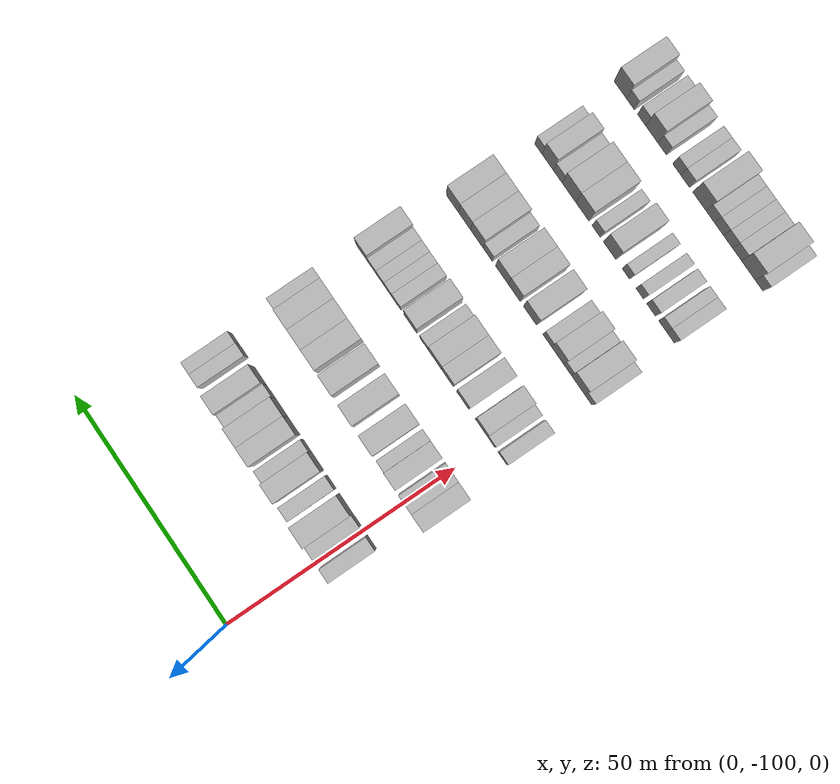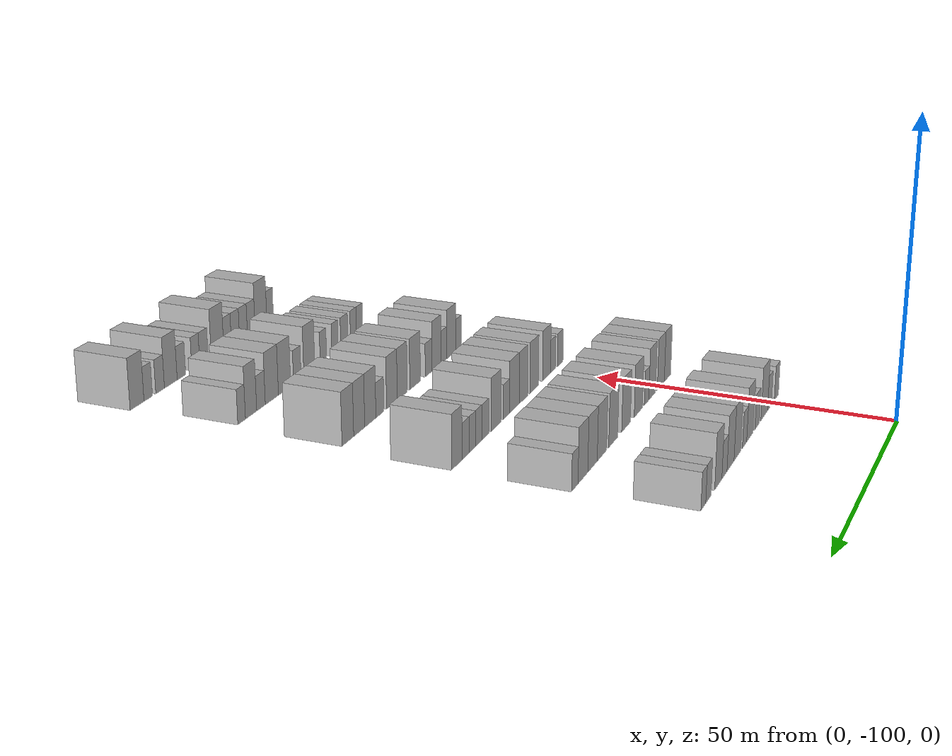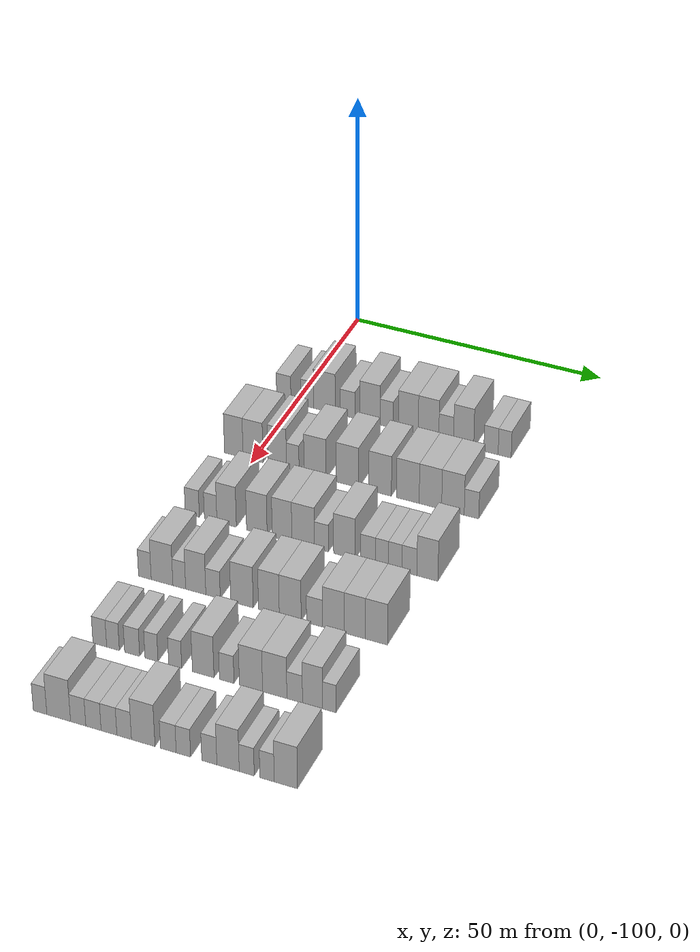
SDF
<sdf version="1.6">
 <world name="default">
  <model name="building_62">
   <static>1</static>
   <pose>25.0000 -102.4413 0 0.000000 0.000000 0.000000</pose>
   <link name="link">
    <pose>0 0 3.00 0 0 0</pose>
    <collision name="collision"><geometry><box><size>10.0000 2.9360 6.0000</size></box></geometry></collision>
    <visual name="visual">
     <cast_shadows>0</cast_shadows>
     <geometry><box><size>10.0000 2.9360 6.0000</size></box></geometry>
     <material>
      <script>
       <uri>model://HANNAS_wall/materials/scripts</uri>
       <uri>model://HANNAS_wall/materials/textures</uri>
       <name>vrc/HANNAS_wall</name>
      </script>
     </material>
    </visual>
   </link>
  </model>
  <model name="building_63">
   <static>1</static>
   <pose>25.0000 -97.6475 0 0.000000 0.000000 0.000000</pose>
   <link name="link">
    <pose>0 0 3.00 0 0 0</pose>
    <collision name="collision"><geometry><box><size>10.0000 2.6516 6.0000</size></box></geometry></collision>
    <visual name="visual">
     <cast_shadows>0</cast_shadows>
     <geometry><box><size>10.0000 2.6516 6.0000</size></box></geometry>
     <material>
      <script>
       <uri>model://HANNAS_wall/materials/scripts</uri>
       <uri>model://HANNAS_wall/materials/textures</uri>
       <name>vrc/HANNAS_wall</name>
      </script>
     </material>
    </visual>
   </link>
  </model>
  <model name="building_64">
   <static>1</static>
   <pose>25.0000 -94.1188 0 0.000000 0.000000 0.000000</pose>
   <link name="link">
    <pose>0 0 4.50 0 0 0</pose>
    <collision name="collision"><geometry><box><size>10.0000 4.4057 9.0000</size></box></geometry></collision>
    <visual name="visual">
     <cast_shadows>0</cast_shadows>
     <geometry><box><size>10.0000 4.4057 9.0000</size></box></geometry>
     <material>
      <script>
       <uri>model://HANNAS_wall/materials/scripts</uri>
       <uri>model://HANNAS_wall/materials/textures</uri>
       <name>vrc/HANNAS_wall</name>
      </script>
     </material>
    </visual>
   </link>
  </model>
  <model name="building_65">
   <static>1</static>
   <pose>25.0000 -89.4282 0 0.000000 0.000000 0.000000</pose>
   <link name="link">
    <pose>0 0 3.00 0 0 0</pose>
    <collision name="collision"><geometry><box><size>10.0000 2.9756 6.0000</size></box></geometry></collision>
    <visual name="visual">
     <cast_shadows>0</cast_shadows>
     <geometry><box><size>10.0000 2.9756 6.0000</size></box></geometry>
     <material>
      <script>
       <uri>model://HANNAS_wall/materials/scripts</uri>
       <uri>model://HANNAS_wall/materials/textures</uri>
       <name>vrc/HANNAS_wall</name>
      </script>
     </material>
    </visual>
   </link>
  </model>
  <model name="building_66">
   <static>1</static>
   <pose>25.0000 -84.8848 0 0.000000 0.000000 0.000000</pose>
   <link name="link">
    <pose>0 0 4.50 0 0 0</pose>
    <collision name="collision"><geometry><box><size>10.0000 4.1113 9.0000</size></box></geometry></collision>
    <visual name="visual">
     <cast_shadows>0</cast_shadows>
     <geometry><box><size>10.0000 4.1113 9.0000</size></box></geometry>
     <material>
      <script>
       <uri>model://HANNAS_wall/materials/scripts</uri>
       <uri>model://HANNAS_wall/materials/textures</uri>
       <name>vrc/HANNAS_wall</name>
      </script>
     </material>
    </visual>
   </link>
  </model>
  <model name="building_67">
   <static>1</static>
   <pose>25.0000 -81.4990 0 0.000000 0.000000 0.000000</pose>
   <link name="link">
    <pose>0 0 3.00 0 0 0</pose>
    <collision name="collision"><geometry><box><size>10.0000 2.6603 6.0000</size></box></geometry></collision>
    <visual name="visual">
     <cast_shadows>0</cast_shadows>
     <geometry><box><size>10.0000 2.6603 6.0000</size></box></geometry>
     <material>
      <script>
       <uri>model://HANNAS_wall/materials/scripts</uri>
       <uri>model://HANNAS_wall/materials/textures</uri>
       <name>vrc/HANNAS_wall</name>
      </script>
     </material>
    </visual>
   </link>
  </model>
  <model name="building_68">
   <static>1</static>
   <pose>25.0000 -77.1677 0 0.000000 0.000000 0.000000</pose>
   <link name="link">
    <pose>0 0 4.50 0 0 0</pose>
    <collision name="collision"><geometry><box><size>10.0000 4.0021 9.0000</size></box></geometry></collision>
    <visual name="visual">
     <cast_shadows>0</cast_shadows>
     <geometry><box><size>10.0000 4.0021 9.0000</size></box></geometry>
     <material>
      <script>
       <uri>model://HANNAS_wall/materials/scripts</uri>
       <uri>model://HANNAS_wall/materials/textures</uri>
       <name>vrc/HANNAS_wall</name>
      </script>
     </material>
    </visual>
   </link>
  </model>
  <model name="building_69">
   <static>1</static>
   <pose>25.0000 -73.1224 0 0.000000 0.000000 0.000000</pose>
   <link name="link">
    <pose>0 0 4.50 0 0 0</pose>
    <collision name="collision"><geometry><box><size>10.0000 4.0885 9.0000</size></box></geometry></collision>
    <visual name="visual">
     <cast_shadows>0</cast_shadows>
     <geometry><box><size>10.0000 4.0885 9.0000</size></box></geometry>
     <material>
      <script>
       <uri>model://HANNAS_wall/materials/scripts</uri>
       <uri>model://HANNAS_wall/materials/textures</uri>
       <name>vrc/HANNAS_wall</name>
      </script>
     </material>
    </visual>
   </link>
  </model>
  <model name="building_70">
   <static>1</static>
   <pose>25.0000 -69.6145 0 0.000000 0.000000 0.000000</pose>
   <link name="link">
    <pose>0 0 3.00 0 0 0</pose>
    <collision name="collision"><geometry><box><size>10.0000 2.9274 6.0000</size></box></geometry></collision>
    <visual name="visual">
     <cast_shadows>0</cast_shadows>
     <geometry><box><size>10.0000 2.9274 6.0000</size></box></geometry>
     <material>
      <script>
       <uri>model://HANNAS_wall/materials/scripts</uri>
       <uri>model://HANNAS_wall/materials/textures</uri>
       <name>vrc/HANNAS_wall</name>
      </script>
     </material>
    </visual>
   </link>
  </model>
  <model name="building_71">
   <static>1</static>
   <pose>25.0000 -66.1592 0 0.000000 0.000000 0.000000</pose>
   <link name="link">
    <pose>0 0 4.50 0 0 0</pose>
    <collision name="collision"><geometry><box><size>10.0000 3.9831 9.0000</size></box></geometry></collision>
    <visual name="visual">
     <cast_shadows>0</cast_shadows>
     <geometry><box><size>10.0000 3.9831 9.0000</size></box></geometry>
     <material>
      <script>
       <uri>model://HANNAS_wall/materials/scripts</uri>
       <uri>model://HANNAS_wall/materials/textures</uri>
       <name>vrc/HANNAS_wall</name>
      </script>
     </material>
    </visual>
   </link>
  </model>
  <model name="building_72">
   <static>1</static>
   <pose>25.0000 -60.7591 0 0.000000 0.000000 0.000000</pose>
   <link name="link">
    <pose>0 0 3.00 0 0 0</pose>
    <collision name="collision"><geometry><box><size>10.0000 2.8173 6.0000</size></box></geometry></collision>
    <visual name="visual">
     <cast_shadows>0</cast_shadows>
     <geometry><box><size>10.0000 2.8173 6.0000</size></box></geometry>
     <material>
      <script>
       <uri>model://HANNAS_wall/materials/scripts</uri>
       <uri>model://HANNAS_wall/materials/textures</uri>
       <name>vrc/HANNAS_wall</name>
      </script>
     </material>
    </visual>
   </link>
  </model>
  <model name="building_73">
   <static>1</static>
   <pose>25.0000 -58.0725 0 0.000000 0.000000 0.000000</pose>
   <link name="link">
    <pose>0 0 3.00 0 0 0</pose>
    <collision name="collision"><geometry><box><size>10.0000 2.5558 6.0000</size></box></geometry></collision>
    <visual name="visual">
     <cast_shadows>0</cast_shadows>
     <geometry><box><size>10.0000 2.5558 6.0000</size></box></geometry>
     <material>
      <script>
       <uri>model://HANNAS_wall/materials/scripts</uri>
       <uri>model://HANNAS_wall/materials/textures</uri>
       <name>vrc/HANNAS_wall</name>
      </script>
     </material>
    </visual>
   </link>
  </model>
  <model name="building_236">
   <static>1</static>
   <pose>44.0000 -103.9884 0 0.000000 0.000000 0.000000</pose>
   <link name="link">
    <pose>0 0 4.50 0 0 0</pose>
    <collision name="collision"><geometry><box><size>10.0000 3.7466 9.0000</size></box></geometry></collision>
    <visual name="visual">
     <cast_shadows>0</cast_shadows>
     <geometry><box><size>10.0000 3.7466 9.0000</size></box></geometry>
     <material>
      <script>
       <uri>model://HANNAS_wall/materials/scripts</uri>
       <uri>model://HANNAS_wall/materials/textures</uri>
       <name>vrc/HANNAS_wall</name>
      </script>
     </material>
    </visual>
   </link>
  </model>
  <model name="building_237">
   <static>1</static>
   <pose>44.0000 -100.1143 0 0.000000 0.000000 0.000000</pose>
   <link name="link">
    <pose>0 0 4.50 0 0 0</pose>
    <collision name="collision"><geometry><box><size>10.0000 4.0016 9.0000</size></box></geometry></collision>
    <visual name="visual">
     <cast_shadows>0</cast_shadows>
     <geometry><box><size>10.0000 4.0016 9.0000</size></box></geometry>
     <material>
      <script>
       <uri>model://HANNAS_wall/materials/scripts</uri>
       <uri>model://HANNAS_wall/materials/textures</uri>
       <name>vrc/HANNAS_wall</name>
      </script>
     </material>
    </visual>
   </link>
  </model>
  <model name="building_238">
   <static>1</static>
   <pose>44.0000 -95.2586 0 0.000000 0.000000 0.000000</pose>
   <link name="link">
    <pose>0 0 4.50 0 0 0</pose>
    <collision name="collision"><geometry><box><size>10.0000 3.7097 9.0000</size></box></geometry></collision>
    <visual name="visual">
     <cast_shadows>0</cast_shadows>
     <geometry><box><size>10.0000 3.7097 9.0000</size></box></geometry>
     <material>
      <script>
       <uri>model://HANNAS_wall/materials/scripts</uri>
       <uri>model://HANNAS_wall/materials/textures</uri>
       <name>vrc/HANNAS_wall</name>
      </script>
     </material>
    </visual>
   </link>
  </model>
  <model name="building_239">
   <static>1</static>
   <pose>44.0000 -92.1482 0 0.000000 0.000000 0.000000</pose>
   <link name="link">
    <pose>0 0 3.00 0 0 0</pose>
    <collision name="collision"><geometry><box><size>10.0000 2.5111 6.0000</size></box></geometry></collision>
    <visual name="visual">
     <cast_shadows>0</cast_shadows>
     <geometry><box><size>10.0000 2.5111 6.0000</size></box></geometry>
     <material>
      <script>
       <uri>model://HANNAS_wall/materials/scripts</uri>
       <uri>model://HANNAS_wall/materials/textures</uri>
       <name>vrc/HANNAS_wall</name>
      </script>
     </material>
    </visual>
   </link>
  </model>
  <model name="building_240">
   <static>1</static>
   <pose>44.0000 -87.7126 0 0.000000 0.000000 0.000000</pose>
   <link name="link">
    <pose>0 0 4.50 0 0 0</pose>
    <collision name="collision"><geometry><box><size>10.0000 4.3602 9.0000</size></box></geometry></collision>
    <visual name="visual">
     <cast_shadows>0</cast_shadows>
     <geometry><box><size>10.0000 4.3602 9.0000</size></box></geometry>
     <material>
      <script>
       <uri>model://HANNAS_wall/materials/scripts</uri>
       <uri>model://HANNAS_wall/materials/textures</uri>
       <name>vrc/HANNAS_wall</name>
      </script>
     </material>
    </visual>
   </link>
  </model>
  <model name="building_241">
   <static>1</static>
   <pose>44.0000 -81.3076 0 0.000000 0.000000 0.000000</pose>
   <link name="link">
    <pose>0 0 4.50 0 0 0</pose>
    <collision name="collision"><geometry><box><size>10.0000 4.4499 9.0000</size></box></geometry></collision>
    <visual name="visual">
     <cast_shadows>0</cast_shadows>
     <geometry><box><size>10.0000 4.4499 9.0000</size></box></geometry>
     <material>
      <script>
       <uri>model://HANNAS_wall/materials/scripts</uri>
       <uri>model://HANNAS_wall/materials/textures</uri>
       <name>vrc/HANNAS_wall</name>
      </script>
     </material>
    </visual>
   </link>
  </model>
  <model name="building_242">
   <static>1</static>
   <pose>44.0000 -74.8862 0 0.000000 0.000000 0.000000</pose>
   <link name="link">
    <pose>0 0 4.50 0 0 0</pose>
    <collision name="collision"><geometry><box><size>10.0000 4.3928 9.0000</size></box></geometry></collision>
    <visual name="visual">
     <cast_shadows>0</cast_shadows>
     <geometry><box><size>10.0000 4.3928 9.0000</size></box></geometry>
     <material>
      <script>
       <uri>model://HANNAS_wall/materials/scripts</uri>
       <uri>model://HANNAS_wall/materials/textures</uri>
       <name>vrc/HANNAS_wall</name>
      </script>
     </material>
    </visual>
   </link>
  </model>
  <model name="building_243">
   <static>1</static>
   <pose>44.0000 -69.4891 0 0.000000 0.000000 0.000000</pose>
   <link name="link">
    <pose>0 0 4.50 0 0 0</pose>
    <collision name="collision"><geometry><box><size>10.0000 4.4014 9.0000</size></box></geometry></collision>
    <visual name="visual">
     <cast_shadows>0</cast_shadows>
     <geometry><box><size>10.0000 4.4014 9.0000</size></box></geometry>
     <material>
      <script>
       <uri>model://HANNAS_wall/materials/scripts</uri>
       <uri>model://HANNAS_wall/materials/textures</uri>
       <name>vrc/HANNAS_wall</name>
      </script>
     </material>
    </visual>
   </link>
  </model>
  <model name="building_244">
   <static>1</static>
   <pose>44.0000 -65.1163 0 0.000000 0.000000 0.000000</pose>
   <link name="link">
    <pose>0 0 4.50 0 0 0</pose>
    <collision name="collision"><geometry><box><size>10.0000 4.3443 9.0000</size></box></geometry></collision>
    <visual name="visual">
     <cast_shadows>0</cast_shadows>
     <geometry><box><size>10.0000 4.3443 9.0000</size></box></geometry>
     <material>
      <script>
       <uri>model://HANNAS_wall/materials/scripts</uri>
       <uri>model://HANNAS_wall/materials/textures</uri>
       <name>vrc/HANNAS_wall</name>
      </script>
     </material>
    </visual>
   </link>
  </model>
  <model name="building_245">
   <static>1</static>
   <pose>44.0000 -60.7713 0 0.000000 0.000000 0.000000</pose>
   <link name="link">
    <pose>0 0 4.50 0 0 0</pose>
    <collision name="collision"><geometry><box><size>10.0000 4.3456 9.0000</size></box></geometry></collision>
    <visual name="visual">
     <cast_shadows>0</cast_shadows>
     <geometry><box><size>10.0000 4.3456 9.0000</size></box></geometry>
     <material>
      <script>
       <uri>model://HANNAS_wall/materials/scripts</uri>
       <uri>model://HANNAS_wall/materials/textures</uri>
       <name>vrc/HANNAS_wall</name>
      </script>
     </material>
    </visual>
   </link>
  </model>
  <model name="building_246">
   <static>1</static>
   <pose>44.0000 -57.1974 0 0.000000 0.000000 0.000000</pose>
   <link name="link">
    <pose>0 0 3.00 0 0 0</pose>
    <collision name="collision"><geometry><box><size>10.0000 2.8023 6.0000</size></box></geometry></collision>
    <visual name="visual">
     <cast_shadows>0</cast_shadows>
     <geometry><box><size>10.0000 2.8023 6.0000</size></box></geometry>
     <material>
      <script>
       <uri>model://HANNAS_wall/materials/scripts</uri>
       <uri>model://HANNAS_wall/materials/textures</uri>
       <name>vrc/HANNAS_wall</name>
      </script>
     </material>
    </visual>
   </link>
  </model>
  <model name="building_404">
   <static>1</static>
   <pose>63.0000 -103.3634 0 0.000000 0.000000 0.000000</pose>
   <link name="link">
    <pose>0 0 3.00 0 0 0</pose>
    <collision name="collision"><geometry><box><size>10.0000 2.7755 6.0000</size></box></geometry></collision>
    <visual name="visual">
     <cast_shadows>0</cast_shadows>
     <geometry><box><size>10.0000 2.7755 6.0000</size></box></geometry>
     <material>
      <script>
       <uri>model://HANNAS_wall/materials/scripts</uri>
       <uri>model://HANNAS_wall/materials/textures</uri>
       <name>vrc/HANNAS_wall</name>
      </script>
     </material>
    </visual>
   </link>
  </model>
  <model name="building_405">
   <static>1</static>
   <pose>63.0000 -99.7443 0 0.000000 0.000000 0.000000</pose>
   <link name="link">
    <pose>0 0 3.00 0 0 0</pose>
    <collision name="collision"><geometry><box><size>10.0000 2.4627 6.0000</size></box></geometry></collision>
    <visual name="visual">
     <cast_shadows>0</cast_shadows>
     <geometry><box><size>10.0000 2.4627 6.0000</size></box></geometry>
     <material>
      <script>
       <uri>model://HANNAS_wall/materials/scripts</uri>
       <uri>model://HANNAS_wall/materials/textures</uri>
       <name>vrc/HANNAS_wall</name>
      </script>
     </material>
    </visual>
   </link>
  </model>
  <model name="building_406">
   <static>1</static>
   <pose>63.0000 -96.5967 0 0.000000 0.000000 0.000000</pose>
   <link name="link">
    <pose>0 0 4.50 0 0 0</pose>
    <collision name="collision"><geometry><box><size>10.0000 3.8323 9.0000</size></box></geometry></collision>
    <visual name="visual">
     <cast_shadows>0</cast_shadows>
     <geometry><box><size>10.0000 3.8323 9.0000</size></box></geometry>
     <material>
      <script>
       <uri>model://HANNAS_wall/materials/scripts</uri>
       <uri>model://HANNAS_wall/materials/textures</uri>
       <name>vrc/HANNAS_wall</name>
      </script>
     </material>
    </visual>
   </link>
  </model>
  <model name="building_407">
   <static>1</static>
   <pose>63.0000 -90.6790 0 0.000000 0.000000 0.000000</pose>
   <link name="link">
    <pose>0 0 4.50 0 0 0</pose>
    <collision name="collision"><geometry><box><size>10.0000 4.0032 9.0000</size></box></geometry></collision>
    <visual name="visual">
     <cast_shadows>0</cast_shadows>
     <geometry><box><size>10.0000 4.0032 9.0000</size></box></geometry>
     <material>
      <script>
       <uri>model://HANNAS_wall/materials/scripts</uri>
       <uri>model://HANNAS_wall/materials/textures</uri>
       <name>vrc/HANNAS_wall</name>
      </script>
     </material>
    </visual>
   </link>
  </model>
  <model name="building_408">
   <static>1</static>
   <pose>63.0000 -85.7730 0 0.000000 0.000000 0.000000</pose>
   <link name="link">
    <pose>0 0 4.50 0 0 0</pose>
    <collision name="collision"><geometry><box><size>10.0000 3.8088 9.0000</size></box></geometry></collision>
    <visual name="visual">
     <cast_shadows>0</cast_shadows>
     <geometry><box><size>10.0000 3.8088 9.0000</size></box></geometry>
     <material>
      <script>
       <uri>model://HANNAS_wall/materials/scripts</uri>
       <uri>model://HANNAS_wall/materials/textures</uri>
       <name>vrc/HANNAS_wall</name>
      </script>
     </material>
    </visual>
   </link>
  </model>
  <model name="building_409">
   <static>1</static>
   <pose>63.0000 -81.6976 0 0.000000 0.000000 0.000000</pose>
   <link name="link">
    <pose>0 0 4.50 0 0 0</pose>
    <collision name="collision"><geometry><box><size>10.0000 4.3421 9.0000</size></box></geometry></collision>
    <visual name="visual">
     <cast_shadows>0</cast_shadows>
     <geometry><box><size>10.0000 4.3421 9.0000</size></box></geometry>
     <material>
      <script>
       <uri>model://HANNAS_wall/materials/scripts</uri>
       <uri>model://HANNAS_wall/materials/textures</uri>
       <name>vrc/HANNAS_wall</name>
      </script>
     </material>
    </visual>
   </link>
  </model>
  <model name="building_410">
   <static>1</static>
   <pose>63.0000 -78.1790 0 0.000000 0.000000 0.000000</pose>
   <link name="link">
    <pose>0 0 3.00 0 0 0</pose>
    <collision name="collision"><geometry><box><size>10.0000 2.6951 6.0000</size></box></geometry></collision>
    <visual name="visual">
     <cast_shadows>0</cast_shadows>
     <geometry><box><size>10.0000 2.6951 6.0000</size></box></geometry>
     <material>
      <script>
       <uri>model://HANNAS_wall/materials/scripts</uri>
       <uri>model://HANNAS_wall/materials/textures</uri>
       <name>vrc/HANNAS_wall</name>
      </script>
     </material>
    </visual>
   </link>
  </model>
  <model name="building_411">
   <static>1</static>
   <pose>63.0000 -73.7713 0 0.000000 0.000000 0.000000</pose>
   <link name="link">
    <pose>0 0 4.50 0 0 0</pose>
    <collision name="collision"><geometry><box><size>10.0000 4.1202 9.0000</size></box></geometry></collision>
    <visual name="visual">
     <cast_shadows>0</cast_shadows>
     <geometry><box><size>10.0000 4.1202 9.0000</size></box></geometry>
     <material>
      <script>
       <uri>model://HANNAS_wall/materials/scripts</uri>
       <uri>model://HANNAS_wall/materials/textures</uri>
       <name>vrc/HANNAS_wall</name>
      </script>
     </material>
    </visual>
   </link>
  </model>
  <model name="building_412">
   <static>1</static>
   <pose>63.0000 -69.2828 0 0.000000 0.000000 0.000000</pose>
   <link name="link">
    <pose>0 0 3.00 0 0 0</pose>
    <collision name="collision"><geometry><box><size>10.0000 2.8568 6.0000</size></box></geometry></collision>
    <visual name="visual">
     <cast_shadows>0</cast_shadows>
     <geometry><box><size>10.0000 2.8568 6.0000</size></box></geometry>
     <material>
      <script>
       <uri>model://HANNAS_wall/materials/scripts</uri>
       <uri>model://HANNAS_wall/materials/textures</uri>
       <name>vrc/HANNAS_wall</name>
      </script>
     </material>
    </visual>
   </link>
  </model>
  <model name="building_413">
   <static>1</static>
   <pose>63.0000 -66.6086 0 0.000000 0.000000 0.000000</pose>
   <link name="link">
    <pose>0 0 3.00 0 0 0</pose>
    <collision name="collision"><geometry><box><size>10.0000 2.4917 6.0000</size></box></geometry></collision>
    <visual name="visual">
     <cast_shadows>0</cast_shadows>
     <geometry><box><size>10.0000 2.4917 6.0000</size></box></geometry>
     <material>
      <script>
       <uri>model://HANNAS_wall/materials/scripts</uri>
       <uri>model://HANNAS_wall/materials/textures</uri>
       <name>vrc/HANNAS_wall</name>
      </script>
     </material>
    </visual>
   </link>
  </model>
  <model name="building_414">
   <static>1</static>
   <pose>63.0000 -64.0875 0 0.000000 0.000000 0.000000</pose>
   <link name="link">
    <pose>0 0 3.00 0 0 0</pose>
    <collision name="collision"><geometry><box><size>10.0000 2.5505 6.0000</size></box></geometry></collision>
    <visual name="visual">
     <cast_shadows>0</cast_shadows>
     <geometry><box><size>10.0000 2.5505 6.0000</size></box></geometry>
     <material>
      <script>
       <uri>model://HANNAS_wall/materials/scripts</uri>
       <uri>model://HANNAS_wall/materials/textures</uri>
       <name>vrc/HANNAS_wall</name>
      </script>
     </material>
    </visual>
   </link>
  </model>
  <model name="building_415">
   <static>1</static>
   <pose>63.0000 -61.4102 0 0.000000 0.000000 0.000000</pose>
   <link name="link">
    <pose>0 0 3.00 0 0 0</pose>
    <collision name="collision"><geometry><box><size>10.0000 2.8040 6.0000</size></box></geometry></collision>
    <visual name="visual">
     <cast_shadows>0</cast_shadows>
     <geometry><box><size>10.0000 2.8040 6.0000</size></box></geometry>
     <material>
      <script>
       <uri>model://HANNAS_wall/materials/scripts</uri>
       <uri>model://HANNAS_wall/materials/textures</uri>
       <name>vrc/HANNAS_wall</name>
      </script>
     </material>
    </visual>
   </link>
  </model>
  <model name="building_416">
   <static>1</static>
   <pose>63.0000 -58.0311 0 0.000000 0.000000 0.000000</pose>
   <link name="link">
    <pose>0 0 4.50 0 0 0</pose>
    <collision name="collision"><geometry><box><size>10.0000 3.9544 9.0000</size></box></geometry></collision>
    <visual name="visual">
     <cast_shadows>0</cast_shadows>
     <geometry><box><size>10.0000 3.9544 9.0000</size></box></geometry>
     <material>
      <script>
       <uri>model://HANNAS_wall/materials/scripts</uri>
       <uri>model://HANNAS_wall/materials/textures</uri>
       <name>vrc/HANNAS_wall</name>
      </script>
     </material>
    </visual>
   </link>
  </model>
  <model name="building_574">
   <static>1</static>
   <pose>82.0000 -103.4493 0 0.000000 0.000000 0.000000</pose>
   <link name="link">
    <pose>0 0 3.00 0 0 0</pose>
    <collision name="collision"><geometry><box><size>10.0000 2.4547 6.0000</size></box></geometry></collision>
    <visual name="visual">
     <cast_shadows>0</cast_shadows>
     <geometry><box><size>10.0000 2.4547 6.0000</size></box></geometry>
     <material>
      <script>
       <uri>model://HANNAS_wall/materials/scripts</uri>
       <uri>model://HANNAS_wall/materials/textures</uri>
       <name>vrc/HANNAS_wall</name>
      </script>
     </material>
    </visual>
   </link>
  </model>
  <model name="building_575">
   <static>1</static>
   <pose>82.0000 -100.1275 0 0.000000 0.000000 0.000000</pose>
   <link name="link">
    <pose>0 0 4.50 0 0 0</pose>
    <collision name="collision"><geometry><box><size>10.0000 4.1891 9.0000</size></box></geometry></collision>
    <visual name="visual">
     <cast_shadows>0</cast_shadows>
     <geometry><box><size>10.0000 4.1891 9.0000</size></box></geometry>
     <material>
      <script>
       <uri>model://HANNAS_wall/materials/scripts</uri>
       <uri>model://HANNAS_wall/materials/textures</uri>
       <name>vrc/HANNAS_wall</name>
      </script>
     </material>
    </visual>
   </link>
  </model>
  <model name="building_576">
   <static>1</static>
   <pose>82.0000 -96.8073 0 0.000000 0.000000 0.000000</pose>
   <link name="link">
    <pose>0 0 3.00 0 0 0</pose>
    <collision name="collision"><geometry><box><size>10.0000 2.4513 6.0000</size></box></geometry></collision>
    <visual name="visual">
     <cast_shadows>0</cast_shadows>
     <geometry><box><size>10.0000 2.4513 6.0000</size></box></geometry>
     <material>
      <script>
       <uri>model://HANNAS_wall/materials/scripts</uri>
       <uri>model://HANNAS_wall/materials/textures</uri>
       <name>vrc/HANNAS_wall</name>
      </script>
     </material>
    </visual>
   </link>
  </model>
  <model name="building_577">
   <static>1</static>
   <pose>82.0000 -93.6465 0 0.000000 0.000000 0.000000</pose>
   <link name="link">
    <pose>0 0 4.50 0 0 0</pose>
    <collision name="collision"><geometry><box><size>10.0000 3.8702 9.0000</size></box></geometry></collision>
    <visual name="visual">
     <cast_shadows>0</cast_shadows>
     <geometry><box><size>10.0000 3.8702 9.0000</size></box></geometry>
     <material>
      <script>
       <uri>model://HANNAS_wall/materials/scripts</uri>
       <uri>model://HANNAS_wall/materials/textures</uri>
       <name>vrc/HANNAS_wall</name>
      </script>
     </material>
    </visual>
   </link>
  </model>
  <model name="building_578">
   <static>1</static>
   <pose>82.0000 -90.3337 0 0.000000 0.000000 0.000000</pose>
   <link name="link">
    <pose>0 0 3.00 0 0 0</pose>
    <collision name="collision"><geometry><box><size>10.0000 2.7554 6.0000</size></box></geometry></collision>
    <visual name="visual">
     <cast_shadows>0</cast_shadows>
     <geometry><box><size>10.0000 2.7554 6.0000</size></box></geometry>
     <material>
      <script>
       <uri>model://HANNAS_wall/materials/scripts</uri>
       <uri>model://HANNAS_wall/materials/textures</uri>
       <name>vrc/HANNAS_wall</name>
      </script>
     </material>
    </visual>
   </link>
  </model>
  <model name="building_579">
   <static>1</static>
   <pose>82.0000 -84.8236 0 0.000000 0.000000 0.000000</pose>
   <link name="link">
    <pose>0 0 4.50 0 0 0</pose>
    <collision name="collision"><geometry><box><size>10.0000 4.2649 9.0000</size></box></geometry></collision>
    <visual name="visual">
     <cast_shadows>0</cast_shadows>
     <geometry><box><size>10.0000 4.2649 9.0000</size></box></geometry>
     <material>
      <script>
       <uri>model://HANNAS_wall/materials/scripts</uri>
       <uri>model://HANNAS_wall/materials/textures</uri>
       <name>vrc/HANNAS_wall</name>
      </script>
     </material>
    </visual>
   </link>
  </model>
  <model name="building_580">
   <static>1</static>
   <pose>82.0000 -79.7392 0 0.000000 0.000000 0.000000</pose>
   <link name="link">
    <pose>0 0 4.50 0 0 0</pose>
    <collision name="collision"><geometry><box><size>10.0000 3.9039 9.0000</size></box></geometry></collision>
    <visual name="visual">
     <cast_shadows>0</cast_shadows>
     <geometry><box><size>10.0000 3.9039 9.0000</size></box></geometry>
     <material>
      <script>
       <uri>model://HANNAS_wall/materials/scripts</uri>
       <uri>model://HANNAS_wall/materials/textures</uri>
       <name>vrc/HANNAS_wall</name>
      </script>
     </material>
    </visual>
   </link>
  </model>
  <model name="building_581">
   <static>1</static>
   <pose>82.0000 -75.7298 0 0.000000 0.000000 0.000000</pose>
   <link name="link">
    <pose>0 0 4.50 0 0 0</pose>
    <collision name="collision"><geometry><box><size>10.0000 4.1148 9.0000</size></box></geometry></collision>
    <visual name="visual">
     <cast_shadows>0</cast_shadows>
     <geometry><box><size>10.0000 4.1148 9.0000</size></box></geometry>
     <material>
      <script>
       <uri>model://HANNAS_wall/materials/scripts</uri>
       <uri>model://HANNAS_wall/materials/textures</uri>
       <name>vrc/HANNAS_wall</name>
      </script>
     </material>
    </visual>
   </link>
  </model>
  <model name="building_582">
   <static>1</static>
   <pose>82.0000 -71.1881 0 0.000000 0.000000 0.000000</pose>
   <link name="link">
    <pose>0 0 3.00 0 0 0</pose>
    <collision name="collision"><geometry><box><size>10.0000 2.9686 6.0000</size></box></geometry></collision>
    <visual name="visual">
     <cast_shadows>0</cast_shadows>
     <geometry><box><size>10.0000 2.9686 6.0000</size></box></geometry>
     <material>
      <script>
       <uri>model://HANNAS_wall/materials/scripts</uri>
       <uri>model://HANNAS_wall/materials/textures</uri>
       <name>vrc/HANNAS_wall</name>
      </script>
     </material>
    </visual>
   </link>
  </model>
  <model name="building_583">
   <static>1</static>
   <pose>82.0000 -67.6742 0 0.000000 0.000000 0.000000</pose>
   <link name="link">
    <pose>0 0 4.50 0 0 0</pose>
    <collision name="collision"><geometry><box><size>10.0000 4.0591 9.0000</size></box></geometry></collision>
    <visual name="visual">
     <cast_shadows>0</cast_shadows>
     <geometry><box><size>10.0000 4.0591 9.0000</size></box></geometry>
     <material>
      <script>
       <uri>model://HANNAS_wall/materials/scripts</uri>
       <uri>model://HANNAS_wall/materials/textures</uri>
       <name>vrc/HANNAS_wall</name>
      </script>
     </material>
    </visual>
   </link>
  </model>
  <model name="building_584">
   <static>1</static>
   <pose>82.0000 -63.6931 0 0.000000 0.000000 0.000000</pose>
   <link name="link">
    <pose>0 0 4.50 0 0 0</pose>
    <collision name="collision"><geometry><box><size>10.0000 3.9031 9.0000</size></box></geometry></collision>
    <visual name="visual">
     <cast_shadows>0</cast_shadows>
     <geometry><box><size>10.0000 3.9031 9.0000</size></box></geometry>
     <material>
      <script>
       <uri>model://HANNAS_wall/materials/scripts</uri>
       <uri>model://HANNAS_wall/materials/textures</uri>
       <name>vrc/HANNAS_wall</name>
      </script>
     </material>
    </visual>
   </link>
  </model>
  <model name="building_585">
   <static>1</static>
   <pose>82.0000 -59.7129 0 0.000000 0.000000 0.000000</pose>
   <link name="link">
    <pose>0 0 4.50 0 0 0</pose>
    <collision name="collision"><geometry><box><size>10.0000 4.0574 9.0000</size></box></geometry></collision>
    <visual name="visual">
     <cast_shadows>0</cast_shadows>
     <geometry><box><size>10.0000 4.0574 9.0000</size></box></geometry>
     <material>
      <script>
       <uri>model://HANNAS_wall/materials/scripts</uri>
       <uri>model://HANNAS_wall/materials/textures</uri>
       <name>vrc/HANNAS_wall</name>
      </script>
     </material>
    </visual>
   </link>
  </model>
  <model name="building_746">
   <static>1</static>
   <pose>101.0000 -102.6066 0 0.000000 0.000000 0.000000</pose>
   <link name="link">
    <pose>0 0 3.00 0 0 0</pose>
    <collision name="collision"><geometry><box><size>10.0000 2.5926 6.0000</size></box></geometry></collision>
    <visual name="visual">
     <cast_shadows>0</cast_shadows>
     <geometry><box><size>10.0000 2.5926 6.0000</size></box></geometry>
     <material>
      <script>
       <uri>model://HANNAS_wall/materials/scripts</uri>
       <uri>model://HANNAS_wall/materials/textures</uri>
       <name>vrc/HANNAS_wall</name>
      </script>
     </material>
    </visual>
   </link>
  </model>
  <model name="building_747">
   <static>1</static>
   <pose>101.0000 -100.1079 0 0.000000 0.000000 0.000000</pose>
   <link name="link">
    <pose>0 0 3.00 0 0 0</pose>
    <collision name="collision"><geometry><box><size>10.0000 2.4047 6.0000</size></box></geometry></collision>
    <visual name="visual">
     <cast_shadows>0</cast_shadows>
     <geometry><box><size>10.0000 2.4047 6.0000</size></box></geometry>
     <material>
      <script>
       <uri>model://HANNAS_wall/materials/scripts</uri>
       <uri>model://HANNAS_wall/materials/textures</uri>
       <name>vrc/HANNAS_wall</name>
      </script>
     </material>
    </visual>
   </link>
  </model>
  <model name="building_748">
   <static>1</static>
   <pose>101.0000 -96.4898 0 0.000000 0.000000 0.000000</pose>
   <link name="link">
    <pose>0 0 3.00 0 0 0</pose>
    <collision name="collision"><geometry><box><size>10.0000 2.8316 6.0000</size></box></geometry></collision>
    <visual name="visual">
     <cast_shadows>0</cast_shadows>
     <geometry><box><size>10.0000 2.8316 6.0000</size></box></geometry>
     <material>
      <script>
       <uri>model://HANNAS_wall/materials/scripts</uri>
       <uri>model://HANNAS_wall/materials/textures</uri>
       <name>vrc/HANNAS_wall</name>
      </script>
     </material>
    </visual>
   </link>
  </model>
  <model name="building_749">
   <static>1</static>
   <pose>101.0000 -92.8567 0 0.000000 0.000000 0.000000</pose>
   <link name="link">
    <pose>0 0 3.00 0 0 0</pose>
    <collision name="collision"><geometry><box><size>10.0000 2.4347 6.0000</size></box></geometry></collision>
    <visual name="visual">
     <cast_shadows>0</cast_shadows>
     <geometry><box><size>10.0000 2.4347 6.0000</size></box></geometry>
     <material>
      <script>
       <uri>model://HANNAS_wall/materials/scripts</uri>
       <uri>model://HANNAS_wall/materials/textures</uri>
       <name>vrc/HANNAS_wall</name>
      </script>
     </material>
    </visual>
   </link>
  </model>
  <model name="building_750">
   <static>1</static>
   <pose>101.0000 -88.4280 0 0.000000 0.000000 0.000000</pose>
   <link name="link">
    <pose>0 0 3.00 0 0 0</pose>
    <collision name="collision"><geometry><box><size>10.0000 2.4227 6.0000</size></box></geometry></collision>
    <visual name="visual">
     <cast_shadows>0</cast_shadows>
     <geometry><box><size>10.0000 2.4227 6.0000</size></box></geometry>
     <material>
      <script>
       <uri>model://HANNAS_wall/materials/scripts</uri>
       <uri>model://HANNAS_wall/materials/textures</uri>
       <name>vrc/HANNAS_wall</name>
      </script>
     </material>
    </visual>
   </link>
  </model>
  <model name="building_751">
   <static>1</static>
   <pose>101.0000 -83.2188 0 0.000000 0.000000 0.000000</pose>
   <link name="link">
    <pose>0 0 4.50 0 0 0</pose>
    <collision name="collision"><geometry><box><size>10.0000 3.9956 9.0000</size></box></geometry></collision>
    <visual name="visual">
     <cast_shadows>0</cast_shadows>
     <geometry><box><size>10.0000 3.9956 9.0000</size></box></geometry>
     <material>
      <script>
       <uri>model://HANNAS_wall/materials/scripts</uri>
       <uri>model://HANNAS_wall/materials/textures</uri>
       <name>vrc/HANNAS_wall</name>
      </script>
     </material>
    </visual>
   </link>
  </model>
  <model name="building_752">
   <static>1</static>
   <pose>101.0000 -78.8799 0 0.000000 0.000000 0.000000</pose>
   <link name="link">
    <pose>0 0 3.00 0 0 0</pose>
    <collision name="collision"><geometry><box><size>10.0000 2.6823 6.0000</size></box></geometry></collision>
    <visual name="visual">
     <cast_shadows>0</cast_shadows>
     <geometry><box><size>10.0000 2.6823 6.0000</size></box></geometry>
     <material>
      <script>
       <uri>model://HANNAS_wall/materials/scripts</uri>
       <uri>model://HANNAS_wall/materials/textures</uri>
       <name>vrc/HANNAS_wall</name>
      </script>
     </material>
    </visual>
   </link>
  </model>
  <model name="building_753">
   <static>1</static>
   <pose>101.0000 -74.4205 0 0.000000 0.000000 0.000000</pose>
   <link name="link">
    <pose>0 0 4.50 0 0 0</pose>
    <collision name="collision"><geometry><box><size>10.0000 4.2365 9.0000</size></box></geometry></collision>
    <visual name="visual">
     <cast_shadows>0</cast_shadows>
     <geometry><box><size>10.0000 4.2365 9.0000</size></box></geometry>
     <material>
      <script>
       <uri>model://HANNAS_wall/materials/scripts</uri>
       <uri>model://HANNAS_wall/materials/textures</uri>
       <name>vrc/HANNAS_wall</name>
      </script>
     </material>
    </visual>
   </link>
  </model>
  <model name="building_754">
   <static>1</static>
   <pose>101.0000 -70.0854 0 0.000000 0.000000 0.000000</pose>
   <link name="link">
    <pose>0 0 4.50 0 0 0</pose>
    <collision name="collision"><geometry><box><size>10.0000 4.4336 9.0000</size></box></geometry></collision>
    <visual name="visual">
     <cast_shadows>0</cast_shadows>
     <geometry><box><size>10.0000 4.4336 9.0000</size></box></geometry>
     <material>
      <script>
       <uri>model://HANNAS_wall/materials/scripts</uri>
       <uri>model://HANNAS_wall/materials/textures</uri>
       <name>vrc/HANNAS_wall</name>
      </script>
     </material>
    </visual>
   </link>
  </model>
  <model name="building_755">
   <static>1</static>
   <pose>101.0000 -66.4541 0 0.000000 0.000000 0.000000</pose>
   <link name="link">
    <pose>0 0 3.00 0 0 0</pose>
    <collision name="collision"><geometry><box><size>10.0000 2.8291 6.0000</size></box></geometry></collision>
    <visual name="visual">
     <cast_shadows>0</cast_shadows>
     <geometry><box><size>10.0000 2.8291 6.0000</size></box></geometry>
     <material>
      <script>
       <uri>model://HANNAS_wall/materials/scripts</uri>
       <uri>model://HANNAS_wall/materials/textures</uri>
       <name>vrc/HANNAS_wall</name>
      </script>
     </material>
    </visual>
   </link>
  </model>
  <model name="building_756">
   <static>1</static>
   <pose>101.0000 -63.2181 0 0.000000 0.000000 0.000000</pose>
   <link name="link">
    <pose>0 0 4.50 0 0 0</pose>
    <collision name="collision"><geometry><box><size>10.0000 3.6428 9.0000</size></box></geometry></collision>
    <visual name="visual">
     <cast_shadows>0</cast_shadows>
     <geometry><box><size>10.0000 3.6428 9.0000</size></box></geometry>
     <material>
      <script>
       <uri>model://HANNAS_wall/materials/scripts</uri>
       <uri>model://HANNAS_wall/materials/textures</uri>
       <name>vrc/HANNAS_wall</name>
      </script>
     </material>
    </visual>
   </link>
  </model>
  <model name="building_757">
   <static>1</static>
   <pose>101.0000 -60.1833 0 0.000000 0.000000 0.000000</pose>
   <link name="link">
    <pose>0 0 3.00 0 0 0</pose>
    <collision name="collision"><geometry><box><size>10.0000 2.4268 6.0000</size></box></geometry></collision>
    <visual name="visual">
     <cast_shadows>0</cast_shadows>
     <geometry><box><size>10.0000 2.4268 6.0000</size></box></geometry>
     <material>
      <script>
       <uri>model://HANNAS_wall/materials/scripts</uri>
       <uri>model://HANNAS_wall/materials/textures</uri>
       <name>vrc/HANNAS_wall</name>
      </script>
     </material>
    </visual>
   </link>
  </model>
  <model name="building_922">
   <static>1</static>
   <pose>120.0000 -103.9991 0 0.000000 0.000000 0.000000</pose>
   <link name="link">
    <pose>0 0 3.00 0 0 0</pose>
    <collision name="collision"><geometry><box><size>10.0000 2.5057 6.0000</size></box></geometry></collision>
    <visual name="visual">
     <cast_shadows>0</cast_shadows>
     <geometry><box><size>10.0000 2.5057 6.0000</size></box></geometry>
     <material>
      <script>
       <uri>model://HANNAS_wall/materials/scripts</uri>
       <uri>model://HANNAS_wall/materials/textures</uri>
       <name>vrc/HANNAS_wall</name>
      </script>
     </material>
    </visual>
   </link>
  </model>
  <model name="building_923">
   <static>1</static>
   <pose>120.0000 -100.5535 0 0.000000 0.000000 0.000000</pose>
   <link name="link">
    <pose>0 0 4.50 0 0 0</pose>
    <collision name="collision"><geometry><box><size>10.0000 4.3856 9.0000</size></box></geometry></collision>
    <visual name="visual">
     <cast_shadows>0</cast_shadows>
     <geometry><box><size>10.0000 4.3856 9.0000</size></box></geometry>
     <material>
      <script>
       <uri>model://HANNAS_wall/materials/scripts</uri>
       <uri>model://HANNAS_wall/materials/textures</uri>
       <name>vrc/HANNAS_wall</name>
      </script>
     </material>
    </visual>
   </link>
  </model>
  <model name="building_924">
   <static>1</static>
   <pose>120.0000 -96.9534 0 0.000000 0.000000 0.000000</pose>
   <link name="link">
    <pose>0 0 3.00 0 0 0</pose>
    <collision name="collision"><geometry><box><size>10.0000 2.8144 6.0000</size></box></geometry></collision>
    <visual name="visual">
     <cast_shadows>0</cast_shadows>
     <geometry><box><size>10.0000 2.8144 6.0000</size></box></geometry>
     <material>
      <script>
       <uri>model://HANNAS_wall/materials/scripts</uri>
       <uri>model://HANNAS_wall/materials/textures</uri>
       <name>vrc/HANNAS_wall</name>
      </script>
     </material>
    </visual>
   </link>
  </model>
  <model name="building_925">
   <static>1</static>
   <pose>120.0000 -94.1411 0 0.000000 0.000000 0.000000</pose>
   <link name="link">
    <pose>0 0 3.00 0 0 0</pose>
    <collision name="collision"><geometry><box><size>10.0000 2.8103 6.0000</size></box></geometry></collision>
    <visual name="visual">
     <cast_shadows>0</cast_shadows>
     <geometry><box><size>10.0000 2.8103 6.0000</size></box></geometry>
     <material>
      <script>
       <uri>model://HANNAS_wall/materials/scripts</uri>
       <uri>model://HANNAS_wall/materials/textures</uri>
       <name>vrc/HANNAS_wall</name>
      </script>
     </material>
    </visual>
   </link>
  </model>
  <model name="building_926">
   <static>1</static>
   <pose>120.0000 -91.2941 0 0.000000 0.000000 0.000000</pose>
   <link name="link">
    <pose>0 0 3.00 0 0 0</pose>
    <collision name="collision"><geometry><box><size>10.0000 2.8837 6.0000</size></box></geometry></collision>
    <visual name="visual">
     <cast_shadows>0</cast_shadows>
     <geometry><box><size>10.0000 2.8837 6.0000</size></box></geometry>
     <material>
      <script>
       <uri>model://HANNAS_wall/materials/scripts</uri>
       <uri>model://HANNAS_wall/materials/textures</uri>
       <name>vrc/HANNAS_wall</name>
      </script>
     </material>
    </visual>
   </link>
  </model>
  <model name="building_927">
   <static>1</static>
   <pose>120.0000 -88.5223 0 0.000000 0.000000 0.000000</pose>
   <link name="link">
    <pose>0 0 3.00 0 0 0</pose>
    <collision name="collision"><geometry><box><size>10.0000 2.6599 6.0000</size></box></geometry></collision>
    <visual name="visual">
     <cast_shadows>0</cast_shadows>
     <geometry><box><size>10.0000 2.6599 6.0000</size></box></geometry>
     <material>
      <script>
       <uri>model://HANNAS_wall/materials/scripts</uri>
       <uri>model://HANNAS_wall/materials/textures</uri>
       <name>vrc/HANNAS_wall</name>
      </script>
     </material>
    </visual>
   </link>
  </model>
  <model name="building_928">
   <static>1</static>
   <pose>120.0000 -85.0523 0 0.000000 0.000000 0.000000</pose>
   <link name="link">
    <pose>0 0 4.50 0 0 0</pose>
    <collision name="collision"><geometry><box><size>10.0000 4.2801 9.0000</size></box></geometry></collision>
    <visual name="visual">
     <cast_shadows>0</cast_shadows>
     <geometry><box><size>10.0000 4.2801 9.0000</size></box></geometry>
     <material>
      <script>
       <uri>model://HANNAS_wall/materials/scripts</uri>
       <uri>model://HANNAS_wall/materials/textures</uri>
       <name>vrc/HANNAS_wall</name>
      </script>
     </material>
    </visual>
   </link>
  </model>
  <model name="building_929">
   <static>1</static>
   <pose>120.0000 -80.4996 0 0.000000 0.000000 0.000000</pose>
   <link name="link">
    <pose>0 0 3.00 0 0 0</pose>
    <collision name="collision"><geometry><box><size>10.0000 2.8252 6.0000</size></box></geometry></collision>
    <visual name="visual">
     <cast_shadows>0</cast_shadows>
     <geometry><box><size>10.0000 2.8252 6.0000</size></box></geometry>
     <material>
      <script>
       <uri>model://HANNAS_wall/materials/scripts</uri>
       <uri>model://HANNAS_wall/materials/textures</uri>
       <name>vrc/HANNAS_wall</name>
      </script>
     </material>
    </visual>
   </link>
  </model>
  <model name="building_930">
   <static>1</static>
   <pose>120.0000 -77.7885 0 0.000000 0.000000 0.000000</pose>
   <link name="link">
    <pose>0 0 3.00 0 0 0</pose>
    <collision name="collision"><geometry><box><size>10.0000 2.5970 6.0000</size></box></geometry></collision>
    <visual name="visual">
     <cast_shadows>0</cast_shadows>
     <geometry><box><size>10.0000 2.5970 6.0000</size></box></geometry>
     <material>
      <script>
       <uri>model://HANNAS_wall/materials/scripts</uri>
       <uri>model://HANNAS_wall/materials/textures</uri>
       <name>vrc/HANNAS_wall</name>
      </script>
     </material>
    </visual>
   </link>
  </model>
  <model name="building_931">
   <static>1</static>
   <pose>120.0000 -73.1384 0 0.000000 0.000000 0.000000</pose>
   <link name="link">
    <pose>0 0 3.00 0 0 0</pose>
    <collision name="collision"><geometry><box><size>10.0000 2.7031 6.0000</size></box></geometry></collision>
    <visual name="visual">
     <cast_shadows>0</cast_shadows>
     <geometry><box><size>10.0000 2.7031 6.0000</size></box></geometry>
     <material>
      <script>
       <uri>model://HANNAS_wall/materials/scripts</uri>
       <uri>model://HANNAS_wall/materials/textures</uri>
       <name>vrc/HANNAS_wall</name>
      </script>
     </material>
    </visual>
   </link>
  </model>
  <model name="building_932">
   <static>1</static>
   <pose>120.0000 -69.7962 0 0.000000 0.000000 0.000000</pose>
   <link name="link">
    <pose>0 0 4.50 0 0 0</pose>
    <collision name="collision"><geometry><box><size>10.0000 3.9813 9.0000</size></box></geometry></collision>
    <visual name="visual">
     <cast_shadows>0</cast_shadows>
     <geometry><box><size>10.0000 3.9813 9.0000</size></box></geometry>
     <material>
      <script>
       <uri>model://HANNAS_wall/materials/scripts</uri>
       <uri>model://HANNAS_wall/materials/textures</uri>
       <name>vrc/HANNAS_wall</name>
      </script>
     </material>
    </visual>
   </link>
  </model>
  <model name="building_933">
   <static>1</static>
   <pose>120.0000 -66.4764 0 0.000000 0.000000 0.000000</pose>
   <link name="link">
    <pose>0 0 3.00 0 0 0</pose>
    <collision name="collision"><geometry><box><size>10.0000 2.6583 6.0000</size></box></geometry></collision>
    <visual name="visual">
     <cast_shadows>0</cast_shadows>
     <geometry><box><size>10.0000 2.6583 6.0000</size></box></geometry>
     <material>
      <script>
       <uri>model://HANNAS_wall/materials/scripts</uri>
       <uri>model://HANNAS_wall/materials/textures</uri>
       <name>vrc/HANNAS_wall</name>
      </script>
     </material>
    </visual>
   </link>
  </model>
  <model name="building_934">
   <static>1</static>
   <pose>120.0000 -62.8787 0 0.000000 0.000000 0.000000</pose>
   <link name="link">
    <pose>0 0 3.00 0 0 0</pose>
    <collision name="collision"><geometry><box><size>10.0000 2.5373 6.0000</size></box></geometry></collision>
    <visual name="visual">
     <cast_shadows>0</cast_shadows>
     <geometry><box><size>10.0000 2.5373 6.0000</size></box></geometry>
     <material>
      <script>
       <uri>model://HANNAS_wall/materials/scripts</uri>
       <uri>model://HANNAS_wall/materials/textures</uri>
       <name>vrc/HANNAS_wall</name>
      </script>
     </material>
    </visual>
   </link>
  </model>
  <model name="building_935">
   <static>1</static>
   <pose>120.0000 -59.5664 0 0.000000 0.000000 0.000000</pose>
   <link name="link">
    <pose>0 0 4.50 0 0 0</pose>
    <collision name="collision"><geometry><box><size>10.0000 4.0873 9.0000</size></box></geometry></collision>
    <visual name="visual">
     <cast_shadows>0</cast_shadows>
     <geometry><box><size>10.0000 4.0873 9.0000</size></box></geometry>
     <material>
      <script>
       <uri>model://HANNAS_wall/materials/scripts</uri>
       <uri>model://HANNAS_wall/materials/textures</uri>
       <name>vrc/HANNAS_wall</name>
      </script>
     </material>
    </visual>
   </link>
  </model>
 </world>
</sdf>
